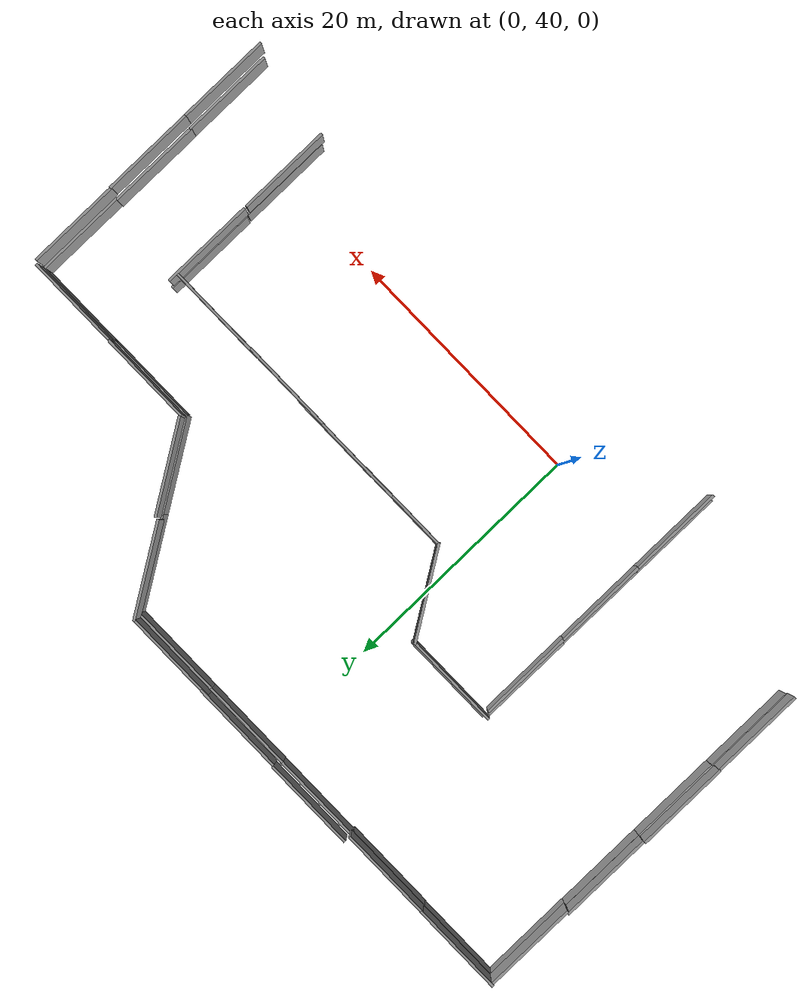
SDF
<sdf version="1.6">
 <world name="world">
  <model name="ground_plane">
   <static>1</static>
   <link name="link">
    <collision name="collision">
     <geometry><plane><normal>0 0 1</normal><size>100 100</size></plane></geometry>
     <surface><friction><ode><mu>100</mu><mu2>50</mu2></ode></friction></surface>
    </collision>
    <velocity_decay><linear>0</linear><angular>0</angular></velocity_decay>
   </link>
  </model>
  <model name="grey_wall_clone_clone_clone_clone_clone_0_clone_0_clone_0_clone_2_clone_2">
   <static>1</static>
   <link name="link">
    <pose>0 0 1.4 0 -0 0</pose>
    <collision name="collision"><geometry><box><size>7.5 0.2 2.8</size></box></geometry></collision>
    <visual name="visual">
     <cast_shadows>0</cast_shadows>
     <geometry><box><size>7.5 0.2 2.8</size></box></geometry>
     <material>
      <script>
       <uri>model://grey_wall/materials/scripts</uri>
       <uri>model://grey_wall/materials/textures</uri>
       <name>vrc/grey_wall</name>
      </script>
     </material>
    </visual>
   </link>
   <pose>36.3157 38.7822 0 0 -0 1.57</pose>
  </model>
  <model name="grey_wall_clone_clone_clone_clone_clone_0_clone_0_clone_0_clone_2_clone_3">
   <static>1</static>
   <link name="link">
    <pose>0 0 1.4 0 -0 0</pose>
    <collision name="collision"><geometry><box><size>7.5 0.2 2.8</size></box></geometry></collision>
    <visual name="visual">
     <cast_shadows>0</cast_shadows>
     <geometry><box><size>7.5 0.2 2.8</size></box></geometry>
     <material>
      <script>
       <uri>model://grey_wall/materials/scripts</uri>
       <uri>model://grey_wall/materials/textures</uri>
       <name>vrc/grey_wall</name>
      </script>
     </material>
    </visual>
   </link>
   <pose>36.2923 46.1939 0 0 -0 1.57</pose>
  </model>
  <model name="grey_wall_clone_clone_clone_clone_clone_0_clone_0_clone_0_clone_2_clone_4">
   <static>1</static>
   <link name="link">
    <pose>0 0 1.4 0 -0 0</pose>
    <collision name="collision"><geometry><box><size>7.5 0.2 2.8</size></box></geometry></collision>
    <visual name="visual">
     <cast_shadows>0</cast_shadows>
     <geometry><box><size>7.5 0.2 2.8</size></box></geometry>
     <material>
      <script>
       <uri>model://grey_wall/materials/scripts</uri>
       <uri>model://grey_wall/materials/textures</uri>
       <name>vrc/grey_wall</name>
      </script>
     </material>
    </visual>
   </link>
   <pose>36.3588 53.5986 0 0 -0 1.57</pose>
  </model>
  <model name="grey_wall_clone_clone_clone_0_clone_0_clone_0_clone_0_clone_clone_1_clone_2">
   <static>1</static>
   <link name="link">
    <pose>0 0 1.4 0 -0 0</pose>
    <collision name="collision"><geometry><box><size>7.5 0.2 2.8</size></box></geometry></collision>
    <visual name="visual">
     <cast_shadows>0</cast_shadows>
     <geometry><box><size>7.5 0.2 2.8</size></box></geometry>
     <material>
      <script>
       <uri>model://grey_wall/materials/scripts</uri>
       <uri>model://grey_wall/materials/textures</uri>
       <name>vrc/grey_wall</name>
      </script>
     </material>
    </visual>
   </link>
   <pose>36.6707 38.505 2.5 0 -0 1.57</pose>
  </model>
  <model name="grey_wall_clone_clone_clone_0_clone_0_clone_0_clone_0_clone_clone_1_clone_3">
   <static>1</static>
   <link name="link">
    <pose>0 0 1.4 0 -0 0</pose>
    <collision name="collision"><geometry><box><size>7.5 0.2 2.8</size></box></geometry></collision>
    <visual name="visual">
     <cast_shadows>0</cast_shadows>
     <geometry><box><size>7.5 0.2 2.8</size></box></geometry>
     <material>
      <script>
       <uri>model://grey_wall/materials/scripts</uri>
       <uri>model://grey_wall/materials/textures</uri>
       <name>vrc/grey_wall</name>
      </script>
     </material>
    </visual>
   </link>
   <pose>36.6689 45.9649 2.5 0 -0 1.57</pose>
  </model>
  <model name="grey_wall_clone_clone_clone_0_clone_0_clone_0_clone_0_clone_clone_1_clone_4">
   <static>1</static>
   <link name="link">
    <pose>0 0 1.4 0 -0 0</pose>
    <collision name="collision"><geometry><box><size>7.5 0.2 2.8</size></box></geometry></collision>
    <visual name="visual">
     <cast_shadows>0</cast_shadows>
     <geometry><box><size>7.5 0.2 2.8</size></box></geometry>
     <material>
      <script>
       <uri>model://grey_wall/materials/scripts</uri>
       <uri>model://grey_wall/materials/textures</uri>
       <name>vrc/grey_wall</name>
      </script>
     </material>
    </visual>
   </link>
   <pose>36.6242 53.3742 2.5 0 -0 1.57</pose>
  </model>
  <model name="grey_wall_clone_1_clone_clone_0_clone">
   <static>1</static>
   <link name="link">
    <pose>0 0 1.4 0 -0 0</pose>
    <collision name="collision"><geometry><box><size>7.5 0.2 2.8</size></box></geometry></collision>
    <visual name="visual">
     <cast_shadows>0</cast_shadows>
     <geometry><box><size>7.5 0.2 2.8</size></box></geometry>
     <material>
      <script>
       <uri>model://grey_wall/materials/scripts</uri>
       <uri>model://grey_wall/materials/textures</uri>
       <name>vrc/grey_wall</name>
      </script>
     </material>
    </visual>
   </link>
   <pose>32.7658 57.2504 0 0 -0 0</pose>
  </model>
  <model name="grey_wall_clone_1_clone_clone_0_clone_0">
   <static>1</static>
   <link name="link">
    <pose>0 0 1.4 0 -0 0</pose>
    <collision name="collision"><geometry><box><size>7.5 0.2 2.8</size></box></geometry></collision>
    <visual name="visual">
     <cast_shadows>0</cast_shadows>
     <geometry><box><size>7.5 0.2 2.8</size></box></geometry>
     <material>
      <script>
       <uri>model://grey_wall/materials/scripts</uri>
       <uri>model://grey_wall/materials/textures</uri>
       <name>vrc/grey_wall</name>
      </script>
     </material>
    </visual>
   </link>
   <pose>25.3429 57.2172 0 0 -0 0</pose>
  </model>
  <model name="grey_wall_clone_1_clone_clone_2_clone_clone">
   <static>1</static>
   <link name="link">
    <pose>0 0 1.4 0 -0 0</pose>
    <collision name="collision"><geometry><box><size>7.5 0.2 2.8</size></box></geometry></collision>
    <visual name="visual">
     <cast_shadows>0</cast_shadows>
     <geometry><box><size>7.5 0.2 2.8</size></box></geometry>
     <material>
      <script>
       <uri>model://grey_wall/materials/scripts</uri>
       <uri>model://grey_wall/materials/textures</uri>
       <name>vrc/grey_wall</name>
      </script>
     </material>
    </visual>
   </link>
   <pose>19.4966 60.3284 0 0 0 -1</pose>
  </model>
  <model name="grey_wall_clone_1_clone_clone_2_clone_clone_clone">
   <static>1</static>
   <link name="link">
    <pose>0 0 1.4 0 -0 0</pose>
    <collision name="collision"><geometry><box><size>7.5 0.2 2.8</size></box></geometry></collision>
    <visual name="visual">
     <cast_shadows>0</cast_shadows>
     <geometry><box><size>7.5 0.2 2.8</size></box></geometry>
     <material>
      <script>
       <uri>model://grey_wall/materials/scripts</uri>
       <uri>model://grey_wall/materials/textures</uri>
       <name>vrc/grey_wall</name>
      </script>
     </material>
    </visual>
   </link>
   <pose>15.4702 66.5937 0 0 0 -1</pose>
  </model>
  <model name="grey_wall_clone_1_clone_clone_0_clone_1">
   <static>1</static>
   <link name="link">
    <pose>0 0 1.4 0 -0 0</pose>
    <collision name="collision"><geometry><box><size>7.5 0.2 2.8</size></box></geometry></collision>
    <visual name="visual">
     <cast_shadows>0</cast_shadows>
     <geometry><box><size>7.5 0.2 2.8</size></box></geometry>
     <material>
      <script>
       <uri>model://grey_wall/materials/scripts</uri>
       <uri>model://grey_wall/materials/textures</uri>
       <name>vrc/grey_wall</name>
      </script>
     </material>
    </visual>
   </link>
   <pose>9.69868 69.6743 0 0 -0 0</pose>
  </model>
  <model name="grey_wall_clone_1_clone_clone_0_clone_2">
   <static>1</static>
   <link name="link">
    <pose>0 0 1.4 0 -0 0</pose>
    <collision name="collision"><geometry><box><size>7.5 0.2 2.8</size></box></geometry></collision>
    <visual name="visual">
     <cast_shadows>0</cast_shadows>
     <geometry><box><size>7.5 0.2 2.8</size></box></geometry>
     <material>
      <script>
       <uri>model://grey_wall/materials/scripts</uri>
       <uri>model://grey_wall/materials/textures</uri>
       <name>vrc/grey_wall</name>
      </script>
     </material>
    </visual>
   </link>
   <pose>2.16297 69.6795 0 0 -0 0</pose>
  </model>
  <model name="grey_wall_clone_1_clone_clone_0_clone_3">
   <static>1</static>
   <link name="link">
    <pose>0 0 1.4 0 -0 0</pose>
    <collision name="collision"><geometry><box><size>7.5 0.2 2.8</size></box></geometry></collision>
    <visual name="visual">
     <cast_shadows>0</cast_shadows>
     <geometry><box><size>7.5 0.2 2.8</size></box></geometry>
     <material>
      <script>
       <uri>model://grey_wall/materials/scripts</uri>
       <uri>model://grey_wall/materials/textures</uri>
       <name>vrc/grey_wall</name>
      </script>
     </material>
    </visual>
   </link>
   <pose>-5.23101 69.6859 0 0 -0 0</pose>
  </model>
  <model name="grey_wall_clone_1_clone_clone_0_clone_4">
   <static>1</static>
   <link name="link">
    <pose>0 0 1.4 0 -0 0</pose>
    <collision name="collision"><geometry><box><size>7.5 0.2 2.8</size></box></geometry></collision>
    <visual name="visual">
     <cast_shadows>0</cast_shadows>
     <geometry><box><size>7.5 0.2 2.8</size></box></geometry>
     <material>
      <script>
       <uri>model://grey_wall/materials/scripts</uri>
       <uri>model://grey_wall/materials/textures</uri>
       <name>vrc/grey_wall</name>
      </script>
     </material>
    </visual>
   </link>
   <pose>-12.5907 69.5614 0 0 -0 0</pose>
  </model>
  <model name="grey_wall_clone_1_clone_clone_0_clone_5">
   <static>1</static>
   <link name="link">
    <pose>0 0 1.4 0 -0 0</pose>
    <collision name="collision"><geometry><box><size>7.5 0.2 2.8</size></box></geometry></collision>
    <visual name="visual">
     <cast_shadows>0</cast_shadows>
     <geometry><box><size>7.5 0.2 2.8</size></box></geometry>
     <material>
      <script>
       <uri>model://grey_wall/materials/scripts</uri>
       <uri>model://grey_wall/materials/textures</uri>
       <name>vrc/grey_wall</name>
      </script>
     </material>
    </visual>
   </link>
   <pose>-19.7762 69.5922 0 0 -0 0</pose>
  </model>
  <model name="grey_wall_clone_clone_clone_clone_clone_clone_clone">
   <static>1</static>
   <link name="link">
    <pose>0 0 1.4 0 -0 0</pose>
    <collision name="collision"><geometry><box><size>7.5 0.2 2.8</size></box></geometry></collision>
    <visual name="visual">
     <cast_shadows>0</cast_shadows>
     <geometry><box><size>7.5 0.2 2.8</size></box></geometry>
     <material>
      <script>
       <uri>model://grey_wall/materials/scripts</uri>
       <uri>model://grey_wall/materials/textures</uri>
       <name>vrc/grey_wall</name>
      </script>
     </material>
    </visual>
   </link>
   <pose>-23.4447 65.8213 0 0 -0 1.57</pose>
  </model>
  <model name="grey_wall_clone_clone_clone_clone_clone_clone_clone_0">
   <static>1</static>
   <link name="link">
    <pose>0 0 1.4 0 -0 0</pose>
    <collision name="collision"><geometry><box><size>7.5 0.2 2.8</size></box></geometry></collision>
    <visual name="visual">
     <cast_shadows>0</cast_shadows>
     <geometry><box><size>7.5 0.2 2.8</size></box></geometry>
     <material>
      <script>
       <uri>model://grey_wall/materials/scripts</uri>
       <uri>model://grey_wall/materials/textures</uri>
       <name>vrc/grey_wall</name>
      </script>
     </material>
    </visual>
   </link>
   <pose>-23.4677 58.4189 0 0 -0 1.57</pose>
  </model>
  <model name="grey_wall_clone_clone_clone_clone_clone_clone_clone_0_clone">
   <static>1</static>
   <link name="link">
    <pose>0 0 1.4 0 -0 0</pose>
    <collision name="collision"><geometry><box><size>7.5 0.2 2.8</size></box></geometry></collision>
    <visual name="visual">
     <cast_shadows>0</cast_shadows>
     <geometry><box><size>7.5 0.2 2.8</size></box></geometry>
     <material>
      <script>
       <uri>model://grey_wall/materials/scripts</uri>
       <uri>model://grey_wall/materials/textures</uri>
       <name>vrc/grey_wall</name>
      </script>
     </material>
    </visual>
   </link>
   <pose>-23.4789 51.0306 0 0 -0 1.57</pose>
  </model>
  <model name="grey_wall_clone_clone_clone_clone_clone_clone_clone_0_clone_0">
   <static>1</static>
   <link name="link">
    <pose>0 0 1.4 0 -0 0</pose>
    <collision name="collision"><geometry><box><size>7.5 0.2 2.8</size></box></geometry></collision>
    <visual name="visual">
     <cast_shadows>0</cast_shadows>
     <geometry><box><size>7.5 0.2 2.8</size></box></geometry>
     <material>
      <script>
       <uri>model://grey_wall/materials/scripts</uri>
       <uri>model://grey_wall/materials/textures</uri>
       <name>vrc/grey_wall</name>
      </script>
     </material>
    </visual>
   </link>
   <pose>-23.489 43.5185 0 0 -0 1.57</pose>
  </model>
  <model name="grey_wall_clone_1_clone_clone_0_clone_0_clone_0">
   <static>1</static>
   <link name="link">
    <pose>0 0 1.4 0 -0 0</pose>
    <collision name="collision"><geometry><box><size>7.5 0.2 2.8</size></box></geometry></collision>
    <visual name="visual">
     <cast_shadows>0</cast_shadows>
     <geometry><box><size>7.5 0.2 2.8</size></box></geometry>
     <material>
      <script>
       <uri>model://grey_wall/materials/scripts</uri>
       <uri>model://grey_wall/materials/textures</uri>
       <name>vrc/grey_wall</name>
      </script>
     </material>
    </visual>
   </link>
   <pose>20.0872 50.477 0 0 -0 0</pose>
  </model>
  <model name="grey_wall_clone_1_clone_clone_0_clone_0_clone_1">
   <static>1</static>
   <link name="link">
    <pose>0 0 1.4 0 -0 0</pose>
    <collision name="collision"><geometry><box><size>7.5 0.2 2.8</size></box></geometry></collision>
    <visual name="visual">
     <cast_shadows>0</cast_shadows>
     <geometry><box><size>7.5 0.2 2.8</size></box></geometry>
     <material>
      <script>
       <uri>model://grey_wall/materials/scripts</uri>
       <uri>model://grey_wall/materials/textures</uri>
       <name>vrc/grey_wall</name>
      </script>
     </material>
    </visual>
   </link>
   <pose>12.7282 50.5371 0 0 -0 0</pose>
  </model>
  <model name="grey_wall_clone_1_clone_clone_0_clone_0_clone_1_clone">
   <static>1</static>
   <link name="link">
    <pose>0 0 1.4 0 -0 0</pose>
    <collision name="collision"><geometry><box><size>7.5 0.2 2.8</size></box></geometry></collision>
    <visual name="visual">
     <cast_shadows>0</cast_shadows>
     <geometry><box><size>7.5 0.2 2.8</size></box></geometry>
     <material>
      <script>
       <uri>model://grey_wall/materials/scripts</uri>
       <uri>model://grey_wall/materials/textures</uri>
       <name>vrc/grey_wall</name>
      </script>
     </material>
    </visual>
   </link>
   <pose>5.7587 50.5159 0 0 -0 0</pose>
  </model>
  <model name="grey_wall_clone_1_clone_clone_2_clone_clone_clone_0">
   <static>1</static>
   <link name="link">
    <pose>0 0 1.4 0 -0 0</pose>
    <collision name="collision"><geometry><box><size>7.5 0.2 2.8</size></box></geometry></collision>
    <visual name="visual">
     <cast_shadows>0</cast_shadows>
     <geometry><box><size>7.5 0.2 2.8</size></box></geometry>
     <material>
      <script>
       <uri>model://grey_wall/materials/scripts</uri>
       <uri>model://grey_wall/materials/textures</uri>
       <name>vrc/grey_wall</name>
      </script>
     </material>
    </visual>
   </link>
   <pose>0.058133 53.5932 0 0 0 -1</pose>
  </model>
  <model name="grey_wall_clone_1_clone_clone_0_clone_0_clone_1_clone_clone">
   <static>1</static>
   <link name="link">
    <pose>0 0 1.4 0 -0 0</pose>
    <collision name="collision"><geometry><box><size>7.5 0.2 2.8</size></box></geometry></collision>
    <visual name="visual">
     <cast_shadows>0</cast_shadows>
     <geometry><box><size>7.5 0.2 2.8</size></box></geometry>
     <material>
      <script>
       <uri>model://grey_wall/materials/scripts</uri>
       <uri>model://grey_wall/materials/textures</uri>
       <name>vrc/grey_wall</name>
      </script>
     </material>
    </visual>
   </link>
   <pose>-5.57929 56.7918 0 0 -0 0</pose>
  </model>
  <model name="grey_wall_clone_clone_clone_clone_clone_0_clone_0_clone_0_clone_2_clone_clone_3_clone">
   <static>1</static>
   <link name="link">
    <pose>0 0 1.4 0 -0 0</pose>
    <collision name="collision"><geometry><box><size>7.5 0.2 2.8</size></box></geometry></collision>
    <visual name="visual">
     <cast_shadows>0</cast_shadows>
     <geometry><box><size>7.5 0.2 2.8</size></box></geometry>
     <material>
      <script>
       <uri>model://grey_wall/materials/scripts</uri>
       <uri>model://grey_wall/materials/textures</uri>
       <name>vrc/grey_wall</name>
      </script>
     </material>
    </visual>
   </link>
   <pose>-9.50401 52.6586 0 0 -0 1.57</pose>
  </model>
  <model name="grey_wall_clone_clone_clone_clone_clone_0_clone_0_clone_0_clone_2_clone_clone_3_clone_0">
   <static>1</static>
   <link name="link">
    <pose>0 0 1.4 0 -0 0</pose>
    <collision name="collision"><geometry><box><size>7.5 0.2 2.8</size></box></geometry></collision>
    <visual name="visual">
     <cast_shadows>0</cast_shadows>
     <geometry><box><size>7.5 0.2 2.8</size></box></geometry>
     <material>
      <script>
       <uri>model://grey_wall/materials/scripts</uri>
       <uri>model://grey_wall/materials/textures</uri>
       <name>vrc/grey_wall</name>
      </script>
     </material>
    </visual>
   </link>
   <pose>-9.47898 45.2266 0 0 -0 1.57</pose>
  </model>
  <model name="grey_wall_clone_clone_clone_clone_clone_0_clone_0_clone_0_clone_2_clone_clone_3_clone_1">
   <static>1</static>
   <link name="link">
    <pose>0 0 1.4 0 -0 0</pose>
    <collision name="collision"><geometry><box><size>7.5 0.2 2.8</size></box></geometry></collision>
    <visual name="visual">
     <cast_shadows>0</cast_shadows>
     <geometry><box><size>7.5 0.2 2.8</size></box></geometry>
     <material>
      <script>
       <uri>model://grey_wall/materials/scripts</uri>
       <uri>model://grey_wall/materials/textures</uri>
       <name>vrc/grey_wall</name>
      </script>
     </material>
    </visual>
   </link>
   <pose>-9.4947 37.6767 0 0 -0 1.57</pose>
  </model>
  <model name="grey_wall_clone_clone_clone_clone_clone_0_clone_0_clone_0_clone_2_clone_8">
   <static>1</static>
   <link name="link">
    <pose>0 0 1.4 0 -0 0</pose>
    <collision name="collision"><geometry><box><size>7.5 0.2 2.8</size></box></geometry></collision>
    <visual name="visual">
     <cast_shadows>0</cast_shadows>
     <geometry><box><size>7.5 0.2 2.8</size></box></geometry>
     <material>
      <script>
       <uri>model://grey_wall/materials/scripts</uri>
       <uri>model://grey_wall/materials/textures</uri>
       <name>vrc/grey_wall</name>
      </script>
     </material>
    </visual>
   </link>
   <pose>28.921 40.1212 0 0 -0 1.57</pose>
  </model>
  <model name="grey_wall_clone_clone_clone_clone_clone_0_clone_0_clone_0_clone_2_clone_9">
   <static>1</static>
   <link name="link">
    <pose>0 0 1.4 0 -0 0</pose>
    <collision name="collision"><geometry><box><size>7.5 0.2 2.8</size></box></geometry></collision>
    <visual name="visual">
     <cast_shadows>0</cast_shadows>
     <geometry><box><size>7.5 0.2 2.8</size></box></geometry>
     <material>
      <script>
       <uri>model://grey_wall/materials/scripts</uri>
       <uri>model://grey_wall/materials/textures</uri>
       <name>vrc/grey_wall</name>
      </script>
     </material>
    </visual>
   </link>
   <pose>28.8823 47.7359 0 0 -0 1.57</pose>
  </model>
  <model name="grey_wall_clone_1_clone_clone_0_clone_0_clone_0_clone">
   <static>1</static>
   <link name="link">
    <pose>0 0 1.4 0 -0 0</pose>
    <collision name="collision"><geometry><box><size>7.5 0.2 2.8</size></box></geometry></collision>
    <visual name="visual">
     <cast_shadows>0</cast_shadows>
     <geometry><box><size>7.5 0.2 2.8</size></box></geometry>
     <material>
      <script>
       <uri>model://grey_wall/materials/scripts</uri>
       <uri>model://grey_wall/materials/textures</uri>
       <name>vrc/grey_wall</name>
      </script>
     </material>
    </visual>
   </link>
   <pose>24.9695 50.5179 0 0 -0 0</pose>
  </model>
  <model name="grey_wall_clone_clone_clone_0_clone_0_clone_0_clone_0_clone_clone_1_clone_clone_clone_1">
   <static>1</static>
   <link name="link">
    <pose>0 0 1.4 0 -0 0</pose>
    <collision name="collision"><geometry><box><size>7.5 0.2 2.8</size></box></geometry></collision>
    <visual name="visual">
     <cast_shadows>0</cast_shadows>
     <geometry><box><size>7.5 0.2 2.8</size></box></geometry>
     <material>
      <script>
       <uri>model://grey_wall/materials/scripts</uri>
       <uri>model://grey_wall/materials/textures</uri>
       <name>vrc/grey_wall</name>
      </script>
     </material>
    </visual>
   </link>
   <pose>28.9586 39.8795 2.5 0 -0 1.57</pose>
  </model>
  <model name="grey_wall_clone_clone_clone_0_clone_0_clone_0_clone_0_clone_clone_1_clone_clone_clone_2">
   <static>1</static>
   <link name="link">
    <pose>0 0 1.4 0 -0 0</pose>
    <collision name="collision"><geometry><box><size>7.5 0.2 2.8</size></box></geometry></collision>
    <visual name="visual">
     <cast_shadows>0</cast_shadows>
     <geometry><box><size>7.5 0.2 2.8</size></box></geometry>
     <material>
      <script>
       <uri>model://grey_wall/materials/scripts</uri>
       <uri>model://grey_wall/materials/textures</uri>
       <name>vrc/grey_wall</name>
      </script>
     </material>
    </visual>
   </link>
   <pose>28.9591 47.5306 2.5 0 -0 1.57</pose>
  </model>
  <model name="grey_wall_clone_clone_2_clone_0_clone_0_clone">
   <static>1</static>
   <link name="link">
    <pose>0 0 1.4 0 -0 0</pose>
    <collision name="collision"><geometry><box><size>7.5 0.2 2.8</size></box></geometry></collision>
    <visual name="visual">
     <cast_shadows>0</cast_shadows>
     <geometry><box><size>7.5 0.2 2.8</size></box></geometry>
     <material>
      <script>
       <uri>model://grey_wall/materials/scripts</uri>
       <uri>model://grey_wall/materials/textures</uri>
       <name>vrc/grey_wall</name>
      </script>
     </material>
    </visual>
   </link>
   <pose>25.1535 50.4983 2.5 0 -0 0</pose>
  </model>
  <model name="grey_wall_clone_clone_2_clone_0_clone_0_clone_0">
   <static>1</static>
   <link name="link">
    <pose>0 0 1.4 0 -0 0</pose>
    <collision name="collision"><geometry><box><size>7.5 0.2 2.8</size></box></geometry></collision>
    <visual name="visual">
     <cast_shadows>0</cast_shadows>
     <geometry><box><size>7.5 0.2 2.8</size></box></geometry>
     <material>
      <script>
       <uri>model://grey_wall/materials/scripts</uri>
       <uri>model://grey_wall/materials/textures</uri>
       <name>vrc/grey_wall</name>
      </script>
     </material>
    </visual>
   </link>
   <pose>17.7308 50.4444 2.5 0 -0 0</pose>
  </model>
  <model name="grey_wall_clone_clone_2_clone_0_clone_0_clone_1">
   <static>1</static>
   <link name="link">
    <pose>0 0 1.4 0 -0 0</pose>
    <collision name="collision"><geometry><box><size>7.5 0.2 2.8</size></box></geometry></collision>
    <visual name="visual">
     <cast_shadows>0</cast_shadows>
     <geometry><box><size>7.5 0.2 2.8</size></box></geometry>
     <material>
      <script>
       <uri>model://grey_wall/materials/scripts</uri>
       <uri>model://grey_wall/materials/textures</uri>
       <name>vrc/grey_wall</name>
      </script>
     </material>
    </visual>
   </link>
   <pose>10.5194 50.4865 2.5 0 -0 0</pose>
  </model>
  <model name="grey_wall_clone_clone_2_clone_0_clone_0_clone_2">
   <static>1</static>
   <link name="link">
    <pose>0 0 1.4 0 -0 0</pose>
    <collision name="collision"><geometry><box><size>7.5 0.2 2.8</size></box></geometry></collision>
    <visual name="visual">
     <cast_shadows>0</cast_shadows>
     <geometry><box><size>7.5 0.2 2.8</size></box></geometry>
     <material>
      <script>
       <uri>model://grey_wall/materials/scripts</uri>
       <uri>model://grey_wall/materials/textures</uri>
       <name>vrc/grey_wall</name>
      </script>
     </material>
    </visual>
   </link>
   <pose>5.86162 50.4517 2.5 0 -0 0</pose>
  </model>
  <model name="grey_wall_clone_1_clone_clone_2_clone_clone_clone_0_clone">
   <static>1</static>
   <link name="link">
    <pose>0 0 1.4 0 -0 0</pose>
    <collision name="collision"><geometry><box><size>7.5 0.2 2.8</size></box></geometry></collision>
    <visual name="visual">
     <cast_shadows>0</cast_shadows>
     <geometry><box><size>7.5 0.2 2.8</size></box></geometry>
     <material>
      <script>
       <uri>model://grey_wall/materials/scripts</uri>
       <uri>model://grey_wall/materials/textures</uri>
       <name>vrc/grey_wall</name>
      </script>
     </material>
    </visual>
   </link>
   <pose>0.058 53.5 2.5 0 0 -1</pose>
  </model>
  <model name="grey_wall_clone_clone_2_clone_0_clone_0_clone_2_clone">
   <static>1</static>
   <link name="link">
    <pose>0 0 1.4 0 -0 0</pose>
    <collision name="collision"><geometry><box><size>7.5 0.2 2.8</size></box></geometry></collision>
    <visual name="visual">
     <cast_shadows>0</cast_shadows>
     <geometry><box><size>7.5 0.2 2.8</size></box></geometry>
     <material>
      <script>
       <uri>model://grey_wall/materials/scripts</uri>
       <uri>model://grey_wall/materials/textures</uri>
       <name>vrc/grey_wall</name>
      </script>
     </material>
    </visual>
   </link>
   <pose>-5.77232 56.5626 2.5 0 -0 0</pose>
  </model>
  <model name="grey_wall_clone_1_clone_clone_2_clone_clone_clone_0_clone_clone_0">
   <static>1</static>
   <link name="link">
    <pose>0 0 1.4 0 -0 0</pose>
    <collision name="collision"><geometry><box><size>7.5 0.2 2.8</size></box></geometry></collision>
    <visual name="visual">
     <cast_shadows>0</cast_shadows>
     <geometry><box><size>7.5 0.2 2.8</size></box></geometry>
     <material>
      <script>
       <uri>model://grey_wall/materials/scripts</uri>
       <uri>model://grey_wall/materials/textures</uri>
       <name>vrc/grey_wall</name>
      </script>
     </material>
    </visual>
   </link>
   <pose>15.2051 66.818 2.5 0 0 -1</pose>
  </model>
  <model name="grey_wall_clone_clone_2_clone_0_clone_0_clone_1_clone_3">
   <static>1</static>
   <link name="link">
    <pose>0 0 1.4 0 -0 0</pose>
    <collision name="collision"><geometry><box><size>7.5 0.2 2.8</size></box></geometry></collision>
    <visual name="visual">
     <cast_shadows>0</cast_shadows>
     <geometry><box><size>7.5 0.2 2.8</size></box></geometry>
     <material>
      <script>
       <uri>model://grey_wall/materials/scripts</uri>
       <uri>model://grey_wall/materials/textures</uri>
       <name>vrc/grey_wall</name>
      </script>
     </material>
    </visual>
   </link>
   <pose>-19.7444 69.5733 2.5 0 -0 0</pose>
  </model>
  <model name="grey_wall_clone_clone_2_clone_0_clone_0_clone_1_clone">
   <static>1</static>
   <link name="link">
    <pose>0 0 1.4 0 -0 0</pose>
    <collision name="collision"><geometry><box><size>7.5 0.2 2.8</size></box></geometry></collision>
    <visual name="visual">
     <cast_shadows>0</cast_shadows>
     <geometry><box><size>7.5 0.2 2.8</size></box></geometry>
     <material>
      <script>
       <uri>model://grey_wall/materials/scripts</uri>
       <uri>model://grey_wall/materials/textures</uri>
       <name>vrc/grey_wall</name>
      </script>
     </material>
    </visual>
   </link>
   <pose>-12.3875 69.5519 2.5 0 -0 0</pose>
  </model>
  <model name="grey_wall_clone_clone_2_clone_0_clone_0_clone_1_clone_0">
   <static>1</static>
   <link name="link">
    <pose>0 0 1.4 0 -0 0</pose>
    <collision name="collision"><geometry><box><size>7.5 0.2 2.8</size></box></geometry></collision>
    <visual name="visual">
     <cast_shadows>0</cast_shadows>
     <geometry><box><size>7.5 0.2 2.8</size></box></geometry>
     <material>
      <script>
       <uri>model://grey_wall/materials/scripts</uri>
       <uri>model://grey_wall/materials/textures</uri>
       <name>vrc/grey_wall</name>
      </script>
     </material>
    </visual>
   </link>
   <pose>-4.92534 70.0392 2.5 0 -0 0</pose>
  </model>
  <model name="grey_wall_clone_clone_2_clone_0_clone_0_clone_1_clone_1">
   <static>1</static>
   <link name="link">
    <pose>0 0 1.4 0 -0 0</pose>
    <collision name="collision"><geometry><box><size>7.5 0.2 2.8</size></box></geometry></collision>
    <visual name="visual">
     <cast_shadows>0</cast_shadows>
     <geometry><box><size>7.5 0.2 2.8</size></box></geometry>
     <material>
      <script>
       <uri>model://grey_wall/materials/scripts</uri>
       <uri>model://grey_wall/materials/textures</uri>
       <name>vrc/grey_wall</name>
      </script>
     </material>
    </visual>
   </link>
   <pose>2.56575 69.9367 2.5 0 -0 0</pose>
  </model>
  <model name="grey_wall_clone_clone_2_clone_0_clone_0_clone_1_clone_2">
   <static>1</static>
   <link name="link">
    <pose>0 0 1.4 0 -0 0</pose>
    <collision name="collision"><geometry><box><size>7.5 0.2 2.8</size></box></geometry></collision>
    <visual name="visual">
     <cast_shadows>0</cast_shadows>
     <geometry><box><size>7.5 0.2 2.8</size></box></geometry>
     <material>
      <script>
       <uri>model://grey_wall/materials/scripts</uri>
       <uri>model://grey_wall/materials/textures</uri>
       <name>vrc/grey_wall</name>
      </script>
     </material>
    </visual>
   </link>
   <pose>9.44687 69.9029 2.5 0 -0 0</pose>
  </model>
  <model name="grey_wall_clone_clone_clone_0_clone_0_clone_0_clone_0_clone_clone_1_clone_4_clone_clone">
   <static>1</static>
   <link name="link">
    <pose>0 0 1.4 0 -0 0</pose>
    <collision name="collision"><geometry><box><size>7.5 0.2 2.8</size></box></geometry></collision>
    <visual name="visual">
     <cast_shadows>0</cast_shadows>
     <geometry><box><size>7.5 0.2 2.8</size></box></geometry>
     <material>
      <script>
       <uri>model://grey_wall/materials/scripts</uri>
       <uri>model://grey_wall/materials/textures</uri>
       <name>vrc/grey_wall</name>
      </script>
     </material>
    </visual>
   </link>
   <pose>-23.3086 65.7391 2.5 0 -0 1.57</pose>
  </model>
  <model name="grey_wall_clone_clone_clone_0_clone_0_clone_0_clone_0_clone_clone_1_clone_4_clone_clone_clone">
   <static>1</static>
   <link name="link">
    <pose>0 0 1.4 0 -0 0</pose>
    <collision name="collision"><geometry><box><size>7.5 0.2 2.8</size></box></geometry></collision>
    <visual name="visual">
     <cast_shadows>0</cast_shadows>
     <geometry><box><size>7.5 0.2 2.8</size></box></geometry>
     <material>
      <script>
       <uri>model://grey_wall/materials/scripts</uri>
       <uri>model://grey_wall/materials/textures</uri>
       <name>vrc/grey_wall</name>
      </script>
     </material>
    </visual>
   </link>
   <pose>-23.4737 58.3955 2.5 0 -0 1.57</pose>
  </model>
  <model name="grey_wall_clone_clone_clone_0_clone_0_clone_0_clone_0_clone_clone_1_clone_4_clone_clone_clone_0">
   <static>1</static>
   <link name="link">
    <pose>0 0 1.4 0 -0 0</pose>
    <collision name="collision"><geometry><box><size>7.5 0.2 2.8</size></box></geometry></collision>
    <visual name="visual">
     <cast_shadows>0</cast_shadows>
     <geometry><box><size>7.5 0.2 2.8</size></box></geometry>
     <material>
      <script>
       <uri>model://grey_wall/materials/scripts</uri>
       <uri>model://grey_wall/materials/textures</uri>
       <name>vrc/grey_wall</name>
      </script>
     </material>
    </visual>
   </link>
   <pose>-23.6053 50.886 2.5 0 -0 1.57</pose>
  </model>
  <model name="grey_wall_clone_clone_clone_0_clone_0_clone_0_clone_0_clone_clone_1_clone_4_clone_clone_clone_1">
   <static>1</static>
   <link name="link">
    <pose>0 0 1.4 0 -0 0</pose>
    <collision name="collision"><geometry><box><size>7.5 0.2 2.8</size></box></geometry></collision>
    <visual name="visual">
     <cast_shadows>0</cast_shadows>
     <geometry><box><size>7.5 0.2 2.8</size></box></geometry>
     <material>
      <script>
       <uri>model://grey_wall/materials/scripts</uri>
       <uri>model://grey_wall/materials/textures</uri>
       <name>vrc/grey_wall</name>
      </script>
     </material>
    </visual>
   </link>
   <pose>-23.5626 43.4287 2.5 0 -0 1.57</pose>
  </model>
  <model name="grey_wall_clone_clone_clone_0_clone_2">
   <static>1</static>
   <link name="link">
    <pose>0 0 1.4 0 -0 0</pose>
    <collision name="collision"><geometry><box><size>7.5 0.2 2.8</size></box></geometry></collision>
    <visual name="visual">
     <cast_shadows>0</cast_shadows>
     <geometry><box><size>7.5 0.2 2.8</size></box></geometry>
     <material>
      <script>
       <uri>model://grey_wall/materials/scripts</uri>
       <uri>model://grey_wall/materials/textures</uri>
       <name>vrc/grey_wall</name>
      </script>
     </material>
    </visual>
   </link>
   <pose>-9.1097 37.597 2.5 0 -0 1.57</pose>
  </model>
  <model name="grey_wall_clone_clone_clone_0_clone_3">
   <static>1</static>
   <link name="link">
    <pose>0 0 1.4 0 -0 0</pose>
    <collision name="collision"><geometry><box><size>7.5 0.2 2.8</size></box></geometry></collision>
    <visual name="visual">
     <cast_shadows>0</cast_shadows>
     <geometry><box><size>7.5 0.2 2.8</size></box></geometry>
     <material>
      <script>
       <uri>model://grey_wall/materials/scripts</uri>
       <uri>model://grey_wall/materials/textures</uri>
       <name>vrc/grey_wall</name>
      </script>
     </material>
    </visual>
   </link>
   <pose>-9.10296 45.0316 2.5 0 -0 1.57</pose>
  </model>
  <model name="grey_wall_clone_clone_clone_0_clone_4">
   <static>1</static>
   <link name="link">
    <pose>0 0 1.4 0 -0 0</pose>
    <collision name="collision"><geometry><box><size>7.5 0.2 2.8</size></box></geometry></collision>
    <visual name="visual">
     <cast_shadows>0</cast_shadows>
     <geometry><box><size>7.5 0.2 2.8</size></box></geometry>
     <material>
      <script>
       <uri>model://grey_wall/materials/scripts</uri>
       <uri>model://grey_wall/materials/textures</uri>
       <name>vrc/grey_wall</name>
      </script>
     </material>
    </visual>
   </link>
   <pose>-9.09223 52.435 2.5 0 -0 1.57</pose>
  </model>
  <model name="grey_wall_clone_1_clone_clone_2_clone_clone_clone_0_clone_clone_0_clone">
   <static>1</static>
   <link name="link">
    <pose>0 0 1.4 0 -0 0</pose>
    <collision name="collision"><geometry><box><size>7.5 0.2 2.8</size></box></geometry></collision>
    <visual name="visual">
     <cast_shadows>0</cast_shadows>
     <geometry><box><size>7.5 0.2 2.8</size></box></geometry>
     <material>
      <script>
       <uri>model://grey_wall/materials/scripts</uri>
       <uri>model://grey_wall/materials/textures</uri>
       <name>vrc/grey_wall</name>
      </script>
     </material>
    </visual>
   </link>
   <pose>19.485 60.5637 2.5 0 0 -1</pose>
  </model>
  <model name="grey_wall_clone_clone_2_clone_0_clone_0_clone_clone">
   <static>1</static>
   <link name="link">
    <pose>0 0 1.4 0 -0 0</pose>
    <collision name="collision"><geometry><box><size>7.5 0.2 2.8</size></box></geometry></collision>
    <visual name="visual">
     <cast_shadows>0</cast_shadows>
     <geometry><box><size>7.5 0.2 2.8</size></box></geometry>
     <material>
      <script>
       <uri>model://grey_wall/materials/scripts</uri>
       <uri>model://grey_wall/materials/textures</uri>
       <name>vrc/grey_wall</name>
      </script>
     </material>
    </visual>
   </link>
   <pose>32.6711 57.2957 2.5 0 -0 0</pose>
  </model>
  <model name="grey_wall_clone_clone_2_clone_0_clone_0_clone_clone_0">
   <static>1</static>
   <link name="link">
    <pose>0 0 1.4 0 -0 0</pose>
    <collision name="collision"><geometry><box><size>7.5 0.2 2.8</size></box></geometry></collision>
    <visual name="visual">
     <cast_shadows>0</cast_shadows>
     <geometry><box><size>7.5 0.2 2.8</size></box></geometry>
     <material>
      <script>
       <uri>model://grey_wall/materials/scripts</uri>
       <uri>model://grey_wall/materials/textures</uri>
       <name>vrc/grey_wall</name>
      </script>
     </material>
    </visual>
   </link>
   <pose>25.1533 57.3387 2.5 0 -0 0</pose>
  </model>
 </world>
</sdf>
